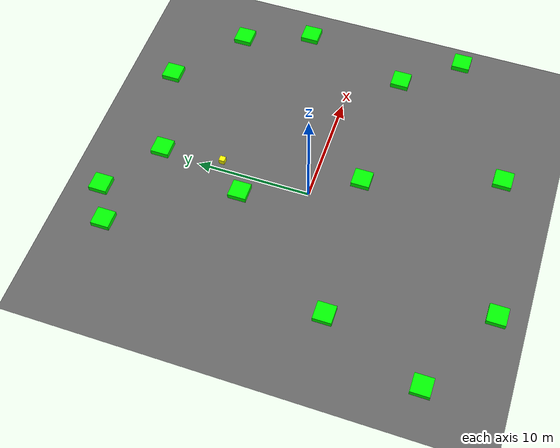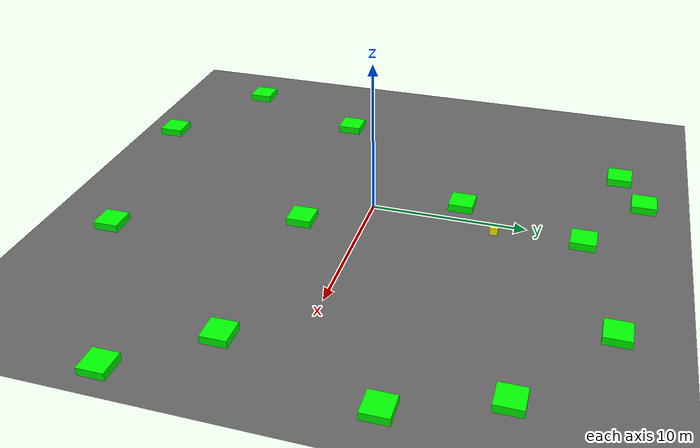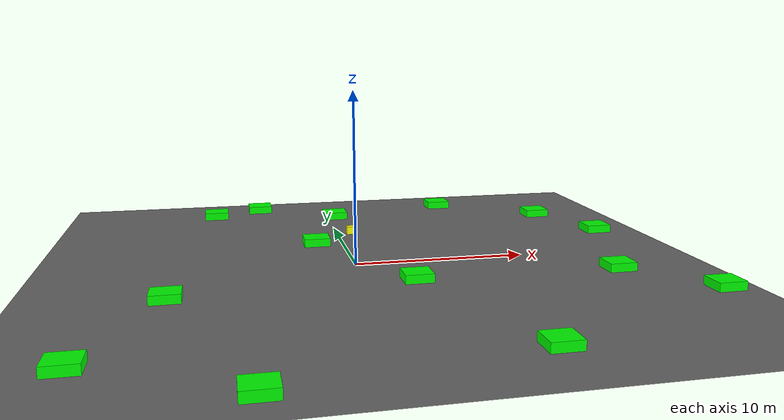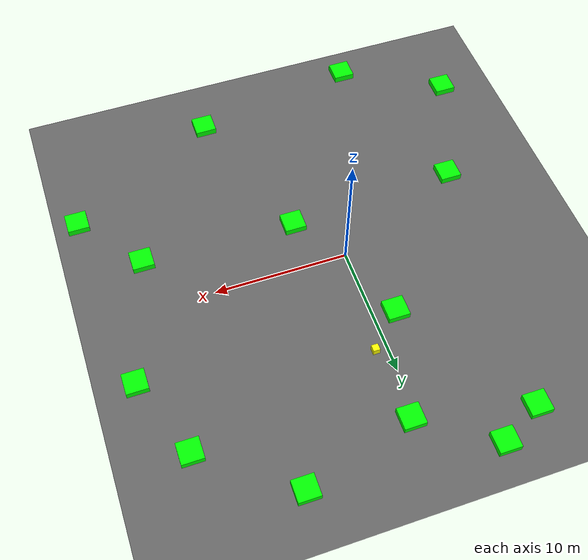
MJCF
<mujoco model="baseline_lvl5_obs14_seed4008">
    <compiler angle="degree" coordinate="local" inertiafromgeom="true"/>
    <option integrator="RK4" timestep="0.01"/>

    <asset>
        <texture builtin="gradient" height="100" rgb1="0.6 0.8 1" rgb2="0 0 0" type="skybox" width="100"/>
        <texture name="floor_texture" type="2d" builtin="checker" width="100" height="100" rgb1="0 0 0" rgb2="0.8 0.8 0.8"/>
        <material name="MatPlane" reflectance="0.5" shininess="1" specular="1" texrepeat="10 10" texture="floor_texture"/>
    </asset>

    <!-- Excluding the contact between the agent and the goal, and the agent and the floor -->
    <contact>
        <exclude body1="agent" body2="goal"/>
        <exclude body1 = "agent" body2 = "floor"/>
    </contact>

    <extension>
        <plugin plugin = "mujoco.pid">
            <instance name = "pid1">
                <config key="kp" value="2"/>
                <config key="ki" value="0"/>
                <config key="kd" value="55"/>
            </instance>
        </plugin>
    </extension>

    <worldbody>
        <light cutoff="100" diffuse="1 1 1" dir="-0 0 -1.3" directional="true" exponent="1" pos="0 0 1.3" specular=".1 .1 .1"/>
        <body name="floor" pos="0 0 0">
            <geom name="floor_geom" type="plane" size="20 20 0.1" material="MatPlane"/>
        </body>

        <!-- Goal -->
        <body name="goal" pos="12.000 -12.000 0">
            <geom name="goal_geom" type="plane" size="0.5 0.5 1" pos="0 0 0" rgba="1 0 0 1"/>
        </body>

        <!-- Agent -->
        <body name="agent" pos="0.869 8.116 0.25">
            <joint name="j1" type="slide" axis ="1 0 0 "/>
            <joint name="j2" type="slide" axis ="0 1 0 "/>
            <geom name="agent_geom" type="box" size="0.25 0.25 0.250" rgba="1 1 0 1"/>
        </body>

    <body name="obstacle1" pos="-6.219 -17.608 0.250">
      <geom name="obstacle1_geom" type="box"
            size="0.800 0.800 0.250"
            rgba="0 1 0 1"/>
    </body>
    <body name="obstacle2" pos="-1.659 5.598 0.250">
      <geom name="obstacle2_geom" type="box"
            size="0.800 0.800 0.250"
            rgba="0 1 0 1"/>
    </body>
    <body name="obstacle3" pos="-4.654 17.084 0.250">
      <geom name="obstacle3_geom" type="box"
            size="0.800 0.800 0.250"
            rgba="0 1 0 1"/>
    </body>
    <body name="obstacle4" pos="2.762 -3.948 0.250">
      <geom name="obstacle4_geom" type="box"
            size="0.800 0.800 0.250"
            rgba="0 1 0 1"/>
    </body>
    <body name="obstacle5" pos="17.137 5.274 0.250">
      <geom name="obstacle5_geom" type="box"
            size="0.800 0.800 0.250"
            rgba="0 1 0 1"/>
    </body>
    <body name="obstacle6" pos="-7.797 15.405 0.250">
      <geom name="obstacle6_geom" type="box"
            size="0.800 0.800 0.250"
            rgba="0 1 0 1"/>
    </body>
    <body name="obstacle7" pos="-10.267 -4.707 0.250">
      <geom name="obstacle7_geom" type="box"
            size="0.800 0.800 0.250"
            rgba="0 1 0 1"/>
    </body>
    <body name="obstacle8" pos="14.361 -4.278 0.250">
      <geom name="obstacle8_geom" type="box"
            size="0.800 0.800 0.250"
            rgba="0 1 0 1"/>
    </body>
    <body name="obstacle9" pos="14.938 11.220 0.250">
      <geom name="obstacle9_geom" type="box"
            size="0.800 0.800 0.250"
            rgba="0 1 0 1"/>
    </body>
    <body name="obstacle10" pos="-13.657 -13.422 0.250">
      <geom name="obstacle10_geom" type="box"
            size="0.800 0.800 0.250"
            rgba="0 1 0 1"/>
    </body>
    <body name="obstacle11" pos="6.477 -15.442 0.250">
      <geom name="obstacle11_geom" type="box"
            size="0.800 0.800 0.250"
            rgba="0 1 0 1"/>
    </body>
    <body name="obstacle12" pos="0.510 13.585 0.250">
      <geom name="obstacle12_geom" type="box"
            size="0.800 0.800 0.250"
            rgba="0 1 0 1"/>
    </body>
    <body name="obstacle13" pos="18.168 -9.114 0.250">
      <geom name="obstacle13_geom" type="box"
            size="0.800 0.800 0.250"
            rgba="0 1 0 1"/>
    </body>
    <body name="obstacle14" pos="8.689 15.972 0.250">
      <geom name="obstacle14_geom" type="box"
            size="0.800 0.800 0.250"
            rgba="0 1 0 1"/>
    </body>
    </worldbody>

    <actuator>
        <plugin joint="j1" plugin="mujoco.pid" instance="pid1" />
        <plugin joint="j2" plugin="mujoco.pid" instance="pid1"/>
    </actuator>

  <sensor>
    <distance name="dist1" geom1="agent_geom" geom2="obstacle1_geom" cutoff="1.5"/>
    <distance name="dist2" geom1="agent_geom" geom2="obstacle2_geom" cutoff="1.5"/>
    <distance name="dist3" geom1="agent_geom" geom2="obstacle3_geom" cutoff="1.5"/>
    <distance name="dist4" geom1="agent_geom" geom2="obstacle4_geom" cutoff="1.5"/>
    <distance name="dist5" geom1="agent_geom" geom2="obstacle5_geom" cutoff="1.5"/>
    <distance name="dist6" geom1="agent_geom" geom2="obstacle6_geom" cutoff="1.5"/>
    <distance name="dist7" geom1="agent_geom" geom2="obstacle7_geom" cutoff="1.5"/>
    <distance name="dist8" geom1="agent_geom" geom2="obstacle8_geom" cutoff="1.5"/>
    <distance name="dist9" geom1="agent_geom" geom2="obstacle9_geom" cutoff="1.5"/>
    <distance name="dist10" geom1="agent_geom" geom2="obstacle10_geom" cutoff="1.5"/>
    <distance name="dist11" geom1="agent_geom" geom2="obstacle11_geom" cutoff="1.5"/>
    <distance name="dist12" geom1="agent_geom" geom2="obstacle12_geom" cutoff="1.5"/>
    <distance name="dist13" geom1="agent_geom" geom2="obstacle13_geom" cutoff="1.5"/>
    <distance name="dist14" geom1="agent_geom" geom2="obstacle14_geom" cutoff="1.5"/>
  </sensor>
</mujoco>
